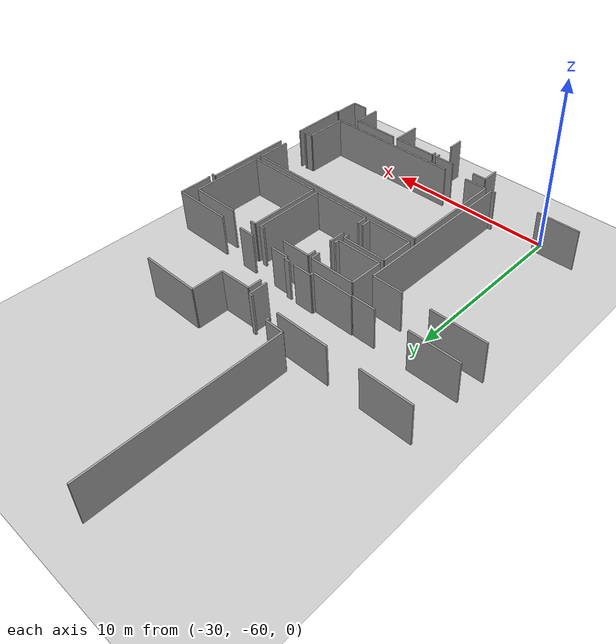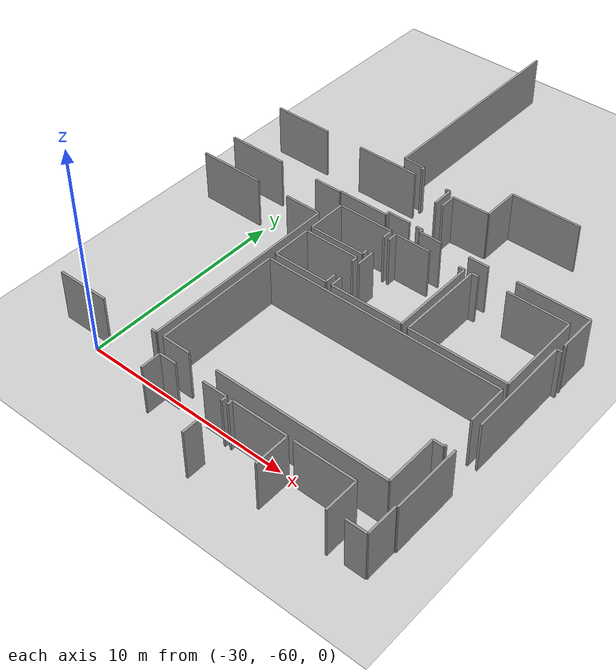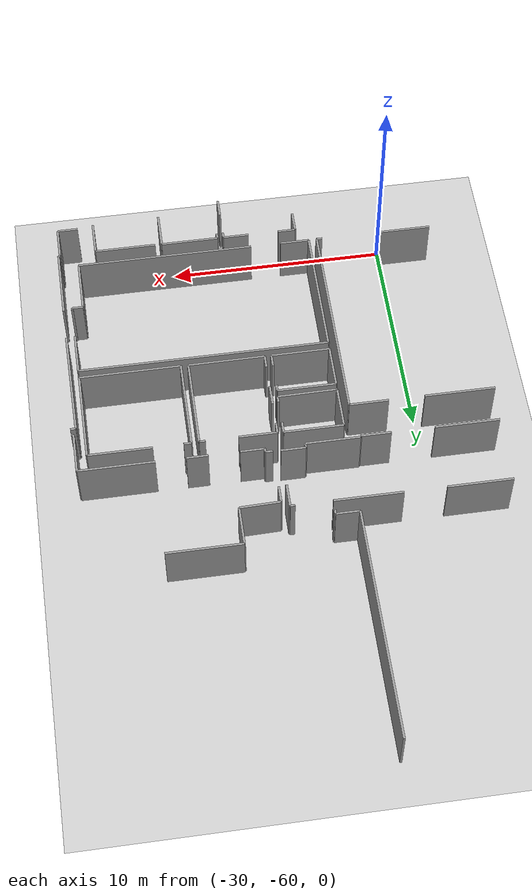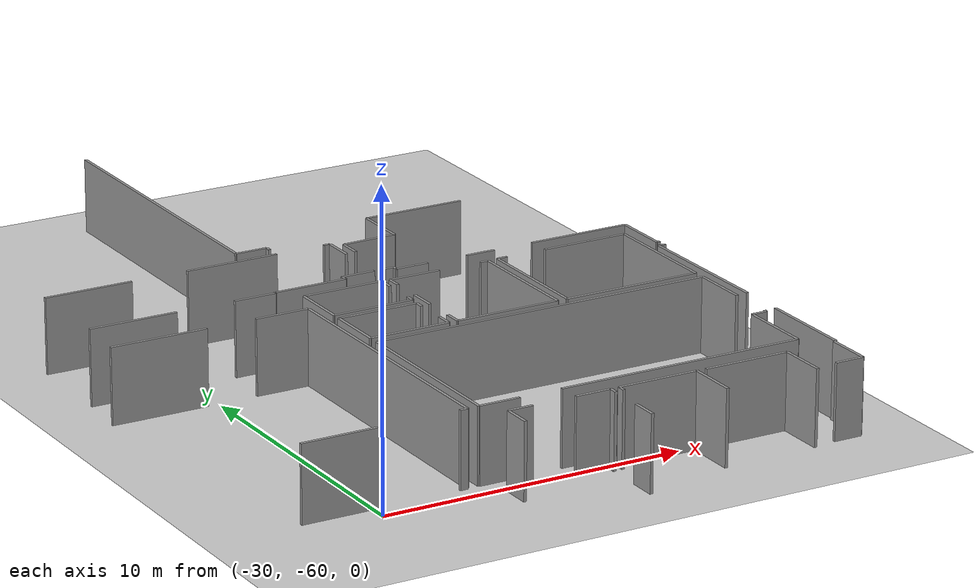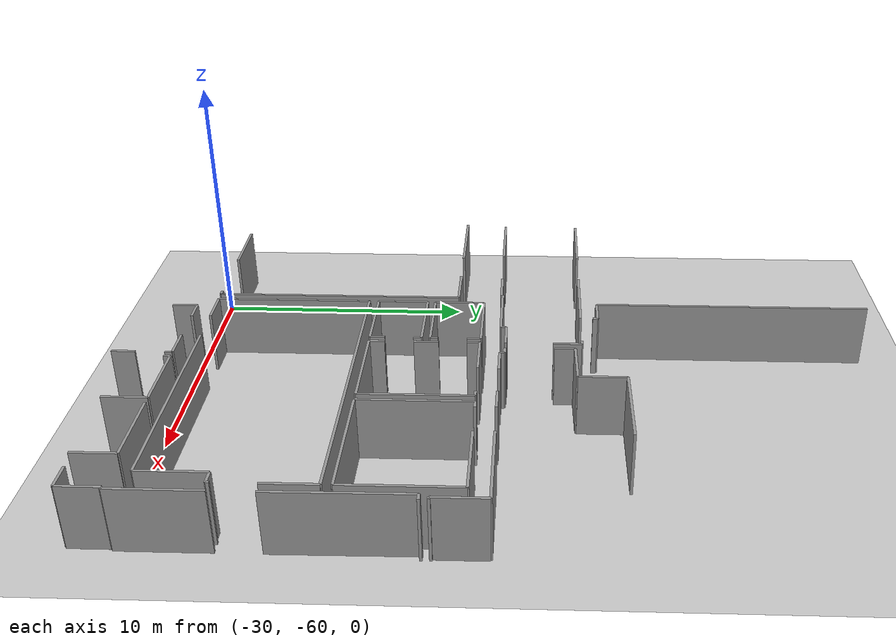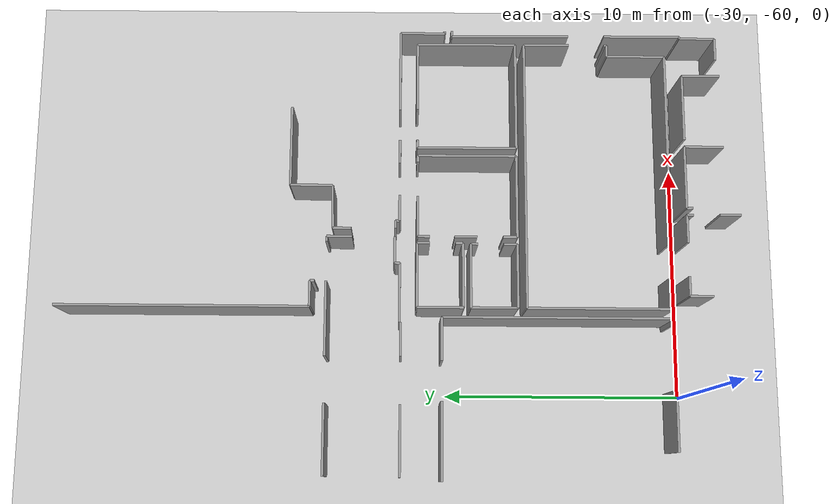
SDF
<sdf version="1.6">
 <world name="default">
  <model name="ground_plane">
   <static>1</static>
   <link name="link">
    <collision name="collision">
     <geometry><plane><normal>0 0 1</normal><size>100 100</size></plane></geometry>
     <surface><friction><ode><mu>100</mu><mu2>50</mu2></ode></friction></surface>
    </collision>
    <visual name="visual">
     <cast_shadows>0</cast_shadows>
     <geometry><plane><normal>0 0 1</normal><size>100 100</size></plane></geometry>
     <material>
      <script><uri>file://media/materials/scripts/gazebo.material</uri><name>Gazebo/Grey</name></script>
     </material>
    </visual>
   </link>
  </model>
  <model name="0510045922_A-40">
   <static>1</static>
   <link name="Wall_1084">
    <collision name="Wall_1084_Collision">
     <geometry><box><size>10.663531804 0.1 2.5</size></box></geometry>
     <pose>5.33176590201 0 1.25 0 0 0</pose>
    </collision>
    <visual name="Wall_1084_Visual">
     <pose>5.33176590201 0 1.25 0 0 0</pose>
     <geometry><box><size>10.663531804 0.1 2.5</size></box></geometry>
     <material>
      <script><uri>file://media/materials/scripts/gazebo.material</uri><name>Gazebo/Grey</name></script>
      <ambient>1 1 1 1</ambient>
     </material>
    </visual>
    <pose>107.676227998 -145.496956218 0 0 0 1.57079632679</pose>
   </link>
   <link name="Wall_1090">
    <collision name="Wall_1090_Collision">
     <geometry><box><size>0.192158607104 0.1 2.5</size></box></geometry>
     <pose>0.0960793035521 0 1.25 0 0 0</pose>
    </collision>
    <visual name="Wall_1090_Visual">
     <pose>0.0960793035521 0 1.25 0 0 0</pose>
     <geometry><box><size>0.192158607104 0.1 2.5</size></box></geometry>
     <material>
      <script><uri>file://media/materials/scripts/gazebo.material</uri><name>Gazebo/Grey</name></script>
      <ambient>1 1 1 1</ambient>
     </material>
    </visual>
    <pose>108.76004321 -145.691402427 0 0 0 1.57079632679</pose>
   </link>
   <link name="Wall_1091">
    <collision name="Wall_1091_Collision">
     <geometry><box><size>1.08381762677 0.1 2.5</size></box></geometry>
     <pose>0.541908813384 0 1.25 0 0 0</pose>
    </collision>
    <visual name="Wall_1091_Visual">
     <pose>0.541908813384 0 1.25 0 0 0</pose>
     <geometry><box><size>1.08381762677 0.1 2.5</size></box></geometry>
     <material>
      <script><uri>file://media/materials/scripts/gazebo.material</uri><name>Gazebo/Grey</name></script>
      <ambient>1 1 1 1</ambient>
     </material>
    </visual>
    <pose>108.76004321 -145.49924382 0 0 0 3.13948196254</pose>
   </link>
   <link name="Wall_1094">
    <collision name="Wall_1094_Collision">
     <geometry><box><size>3.23238228379 0.1 2.5</size></box></geometry>
     <pose>1.61619114189 0 1.25 0 0 0</pose>
    </collision>
    <visual name="Wall_1094_Visual">
     <pose>1.61619114189 0 1.25 0 0 0</pose>
     <geometry><box><size>3.23238228379 0.1 2.5</size></box></geometry>
     <material>
      <script><uri>file://media/materials/scripts/gazebo.material</uri><name>Gazebo/Grey</name></script>
      <ambient>1 1 1 1</ambient>
     </material>
    </visual>
    <pose>100.57347652 -151.006011311 0 0 0 0.0</pose>
   </link>
   <link name="Wall_1095">
    <collision name="Wall_1095_Collision">
     <geometry><box><size>1.80695176971 0.1 2.5</size></box></geometry>
     <pose>0.903475884857 0 1.25 0 0 0</pose>
    </collision>
    <visual name="Wall_1095_Visual">
     <pose>0.903475884857 0 1.25 0 0 0</pose>
     <geometry><box><size>1.80695176971 0.1 2.5</size></box></geometry>
     <material>
      <script><uri>file://media/materials/scripts/gazebo.material</uri><name>Gazebo/Grey</name></script>
      <ambient>1 1 1 1</ambient>
     </material>
    </visual>
    <pose>105.461320455 -151.006011311 0 0 0 0.0</pose>
   </link>
   <link name="Wall_1096">
    <collision name="Wall_1096_Collision">
     <geometry><box><size>9.61606405287 0.1 2.5</size></box></geometry>
     <pose>4.80803202643 0 1.25 0 0 0</pose>
    </collision>
    <visual name="Wall_1096_Visual">
     <pose>4.80803202643 0 1.25 0 0 0</pose>
     <geometry><box><size>9.61606405287 0.1 2.5</size></box></geometry>
     <material>
      <script><uri>file://media/materials/scripts/gazebo.material</uri><name>Gazebo/Grey</name></script>
      <ambient>1 1 1 1</ambient>
     </material>
    </visual>
    <pose>107.268272225 -151.006011311 0 0 0 -1.57079632679</pose>
   </link>
   <link name="Wall_1097">
    <collision name="Wall_1097_Collision">
     <geometry><box><size>0.25494058588 0.1 2.5</size></box></geometry>
     <pose>0.12747029294 0 1.25 0 0 0</pose>
    </collision>
    <visual name="Wall_1097_Visual">
     <pose>0.12747029294 0 1.25 0 0 0</pose>
     <geometry><box><size>0.25494058588 0.1 2.5</size></box></geometry>
     <material>
      <script><uri>file://media/materials/scripts/gazebo.material</uri><name>Gazebo/Grey</name></script>
      <ambient>1 1 1 1</ambient>
     </material>
    </visual>
    <pose>107.268272225 -160.622075364 0 0 0 3.14159265359</pose>
   </link>
   <link name="Wall_1098">
    <collision name="Wall_1098_Collision">
     <geometry><box><size>2.51763360234 0.1 2.5</size></box></geometry>
     <pose>1.25881680117 0 1.25 0 0 0</pose>
    </collision>
    <visual name="Wall_1098_Visual">
     <pose>1.25881680117 0 1.25 0 0 0</pose>
     <geometry><box><size>2.51763360234 0.1 2.5</size></box></geometry>
     <material>
      <script><uri>file://media/materials/scripts/gazebo.material</uri><name>Gazebo/Grey</name></script>
      <ambient>1 1 1 1</ambient>
     </material>
    </visual>
    <pose>104.323111139 -160.622075364 0 0 0 3.14159265359</pose>
   </link>
   <link name="Wall_1154">
    <collision name="Wall_1154_Collision">
     <geometry><box><size>2.96219101481 0.1 2.5</size></box></geometry>
     <pose>1.4810955074 0 1.25 0 0 0</pose>
    </collision>
    <visual name="Wall_1154_Visual">
     <pose>1.4810955074 0 1.25 0 0 0</pose>
     <geometry><box><size>2.96219101481 0.1 2.5</size></box></geometry>
     <material>
      <script><uri>file://media/materials/scripts/gazebo.material</uri><name>Gazebo/Grey</name></script>
      <ambient>1 1 1 1</ambient>
     </material>
    </visual>
    <pose>100.742250747 -146.16722374 0 0 0 0.0</pose>
   </link>
   <link name="Wall_1155">
    <collision name="Wall_1155_Collision">
     <geometry><box><size>3.13554044608 0.1 2.5</size></box></geometry>
     <pose>1.56777022304 0 1.25 0 0 0</pose>
    </collision>
    <visual name="Wall_1155_Visual">
     <pose>1.56777022304 0 1.25 0 0 0</pose>
     <geometry><box><size>3.13554044608 0.1 2.5</size></box></geometry>
     <material>
      <script><uri>file://media/materials/scripts/gazebo.material</uri><name>Gazebo/Grey</name></script>
      <ambient>1 1 1 1</ambient>
     </material>
    </visual>
    <pose>105.620181737 -146.16722374 0 0 0 0.0</pose>
   </link>
   <link name="Wall_1156">
    <collision name="Wall_1156_Collision">
     <geometry><box><size>0.223168329415 0.1 2.5</size></box></geometry>
     <pose>0.111584164707 0 1.25 0 0 0</pose>
    </collision>
    <visual name="Wall_1156_Visual">
     <pose>0.111584164707 0 1.25 0 0 0</pose>
     <geometry><box><size>0.223168329415 0.1 2.5</size></box></geometry>
     <material>
      <script><uri>file://media/materials/scripts/gazebo.material</uri><name>Gazebo/Grey</name></script>
      <ambient>1 1 1 1</ambient>
     </material>
    </visual>
    <pose>110.432280613 -146.16722374 0 0 0 0.0</pose>
   </link>
   <link name="Wall_1157">
    <collision name="Wall_1157_Collision">
     <geometry><box><size>1.07313973438 0.1 2.5</size></box></geometry>
     <pose>0.536569867192 0 1.25 0 0 0</pose>
    </collision>
    <visual name="Wall_1157_Visual">
     <pose>0.536569867192 0 1.25 0 0 0</pose>
     <geometry><box><size>1.07313973438 0.1 2.5</size></box></geometry>
     <material>
      <script><uri>file://media/materials/scripts/gazebo.material</uri><name>Gazebo/Grey</name></script>
      <ambient>1 1 1 1</ambient>
     </material>
    </visual>
    <pose>110.655448942 -146.16722374 0 0 0 -1.57079632679</pose>
   </link>
   <link name="Wall_1158">
    <collision name="Wall_1158_Collision">
     <geometry><box><size>1.13032979602 0.1 2.5</size></box></geometry>
     <pose>0.565164898011 0 1.25 0 0 0</pose>
    </collision>
    <visual name="Wall_1158_Visual">
     <pose>0.565164898011 0 1.25 0 0 0</pose>
     <geometry><box><size>1.13032979602 0.1 2.5</size></box></geometry>
     <material>
      <script><uri>file://media/materials/scripts/gazebo.material</uri><name>Gazebo/Grey</name></script>
      <ambient>1 1 1 1</ambient>
     </material>
    </visual>
    <pose>110.655448942 -149.029268603 0 0 0 3.14159265359</pose>
   </link>
   <link name="Wall_1159">
    <collision name="Wall_1159_Collision">
     <geometry><box><size>0.21071360488 0.1 2.5</size></box></geometry>
     <pose>0.10535680244 0 1.25 0 0 0</pose>
    </collision>
    <visual name="Wall_1159_Visual">
     <pose>0.10535680244 0 1.25 0 0 0</pose>
     <geometry><box><size>0.21071360488 0.1 2.5</size></box></geometry>
     <material>
      <script><uri>file://media/materials/scripts/gazebo.material</uri><name>Gazebo/Grey</name></script>
      <ambient>1 1 1 1</ambient>
     </material>
    </visual>
    <pose>109.525119146 -149.029268603 0 0 0 -1.57079632679</pose>
   </link>
   <link name="Wall_1160">
    <collision name="Wall_1160_Collision">
     <geometry><box><size>2.4899281947 0.1 2.5</size></box></geometry>
     <pose>1.24496409735 0 1.25 0 0 0</pose>
    </collision>
    <visual name="Wall_1160_Visual">
     <pose>1.24496409735 0 1.25 0 0 0</pose>
     <geometry><box><size>2.4899281947 0.1 2.5</size></box></geometry>
     <material>
      <script><uri>file://media/materials/scripts/gazebo.material</uri><name>Gazebo/Grey</name></script>
      <ambient>1 1 1 1</ambient>
     </material>
    </visual>
    <pose>109.525119146 -149.239982208 0 0 0 3.14159265359</pose>
   </link>
   <link name="Wall_1161">
    <collision name="Wall_1161_Collision">
     <geometry><box><size>0.0538857469657 0.1 2.5</size></box></geometry>
     <pose>0.0269428734829 0 1.25 0 0 0</pose>
    </collision>
    <visual name="Wall_1161_Visual">
     <pose>0.0269428734829 0 1.25 0 0 0</pose>
     <geometry><box><size>0.0538857469657 0.1 2.5</size></box></geometry>
     <material>
      <script><uri>file://media/materials/scripts/gazebo.material</uri><name>Gazebo/Grey</name></script>
      <ambient>1 1 1 1</ambient>
     </material>
    </visual>
    <pose>107.035190951 -149.239982208 0 0 0 -1.57079632679</pose>
   </link>
   <link name="Wall_1162">
    <collision name="Wall_1162_Collision">
     <geometry><box><size>1.39391243566 0.1 2.5</size></box></geometry>
     <pose>0.696956217831 0 1.25 0 0 0</pose>
    </collision>
    <visual name="Wall_1162_Visual">
     <pose>0.696956217831 0 1.25 0 0 0</pose>
     <geometry><box><size>1.39391243566 0.1 2.5</size></box></geometry>
     <material>
      <script><uri>file://media/materials/scripts/gazebo.material</uri><name>Gazebo/Grey</name></script>
      <ambient>1 1 1 1</ambient>
     </material>
    </visual>
    <pose>107.035190951 -149.293867955 0 0 0 3.14159265359</pose>
   </link>
   <link name="Wall_1163">
    <collision name="Wall_1163_Collision">
     <geometry><box><size>2.9459236195 0.1 2.5</size></box></geometry>
     <pose>1.47296180975 0 1.25 0 0 0</pose>
    </collision>
    <visual name="Wall_1163_Visual">
     <pose>1.47296180975 0 1.25 0 0 0</pose>
     <geometry><box><size>2.9459236195 0.1 2.5</size></box></geometry>
     <material>
      <script><uri>file://media/materials/scripts/gazebo.material</uri><name>Gazebo/Grey</name></script>
      <ambient>1 1 1 1</ambient>
     </material>
    </visual>
    <pose>103.664535807 -149.293867955 0 0 0 3.14159265359</pose>
   </link>
   <link name="Wall_1182">
    <collision name="Wall_1182_Collision">
     <geometry><box><size>1.93963271272 0.1 2.5</size></box></geometry>
     <pose>0.969816356358 0 1.25 0 0 0</pose>
    </collision>
    <visual name="Wall_1182_Visual">
     <pose>0.969816356358 0 1.25 0 0 0</pose>
     <geometry><box><size>1.93963271272 0.1 2.5</size></box></geometry>
     <material>
      <script><uri>file://media/materials/scripts/gazebo.material</uri><name>Gazebo/Grey</name></script>
      <ambient>1 1 1 1</ambient>
     </material>
    </visual>
    <pose>107.669111012 -151.908597573 0 0 0 1.57079632679</pose>
   </link>
   <link name="Wall_1183">
    <collision name="Wall_1183_Collision">
     <geometry><box><size>2.72504289255 0.1 2.5</size></box></geometry>
     <pose>1.36252144627 0 1.25 0 0 0</pose>
    </collision>
    <visual name="Wall_1183_Visual">
     <pose>1.36252144627 0 1.25 0 0 0</pose>
     <geometry><box><size>2.72504289255 0.1 2.5</size></box></geometry>
     <material>
      <script><uri>file://media/materials/scripts/gazebo.material</uri><name>Gazebo/Grey</name></script>
      <ambient>1 1 1 1</ambient>
     </material>
    </visual>
    <pose>107.669111012 -149.96896486 0 0 0 0.0</pose>
   </link>
   <link name="Wall_1184">
    <collision name="Wall_1184_Collision">
     <geometry><box><size>0.52741945733 0.1 2.5</size></box></geometry>
     <pose>0.263709728665 0 1.25 0 0 0</pose>
    </collision>
    <visual name="Wall_1184_Visual">
     <pose>0.263709728665 0 1.25 0 0 0</pose>
     <geometry><box><size>0.52741945733 0.1 2.5</size></box></geometry>
     <material>
      <script><uri>file://media/materials/scripts/gazebo.material</uri><name>Gazebo/Grey</name></script>
      <ambient>1 1 1 1</ambient>
     </material>
    </visual>
    <pose>110.394153905 -149.96896486 0 0 0 -1.57079632679</pose>
   </link>
   <link name="Wall_1185">
    <collision name="Wall_1185_Collision">
     <geometry><box><size>0.300438457139 0.1 2.5</size></box></geometry>
     <pose>0.15021922857 0 1.25 0 0 0</pose>
    </collision>
    <visual name="Wall_1185_Visual">
     <pose>0.15021922857 0 1.25 0 0 0</pose>
     <geometry><box><size>0.300438457139 0.1 2.5</size></box></geometry>
     <material>
      <script><uri>file://media/materials/scripts/gazebo.material</uri><name>Gazebo/Grey</name></script>
      <ambient>1 1 1 1</ambient>
     </material>
    </visual>
    <pose>110.394153905 -151.588841584 0 0 0 -1.57079632679</pose>
   </link>
   <link name="Wall_1186">
    <collision name="Wall_1186_Collision">
     <geometry><box><size>2.72511136162 0.1 2.5</size></box></geometry>
     <pose>1.36255568081 0 1.25 0 0 0</pose>
    </collision>
    <visual name="Wall_1186_Visual">
     <pose>1.36255568081 0 1.25 0 0 0</pose>
     <geometry><box><size>2.72511136162 0.1 2.5</size></box></geometry>
     <material>
      <script><uri>file://media/materials/scripts/gazebo.material</uri><name>Gazebo/Grey</name></script>
      <ambient>1 1 1 1</ambient>
     </material>
    </visual>
    <pose>110.394153905 -151.889280041 0 0 0 -3.13450388137</pose>
   </link>
   <link name="Wall_1187">
    <collision name="Wall_1187_Collision">
     <geometry><box><size>1.95869606659 0.1 2.5</size></box></geometry>
     <pose>0.979348033297 0 1.25 0 0 0</pose>
    </collision>
    <visual name="Wall_1187_Visual">
     <pose>0.979348033297 0 1.25 0 0 0</pose>
     <geometry><box><size>1.95869606659 0.1 2.5</size></box></geometry>
     <material>
      <script><uri>file://media/materials/scripts/gazebo.material</uri><name>Gazebo/Grey</name></script>
      <ambient>1 1 1 1</ambient>
     </material>
    </visual>
    <pose>107.666060876 -154.176628328 0 0 0 1.57079632679</pose>
   </link>
   <link name="Wall_1188">
    <collision name="Wall_1188_Collision">
     <geometry><box><size>2.69276227998 0.1 2.5</size></box></geometry>
     <pose>1.34638113999 0 1.25 0 0 0</pose>
    </collision>
    <visual name="Wall_1188_Visual">
     <pose>1.34638113999 0 1.25 0 0 0</pose>
     <geometry><box><size>2.69276227998 0.1 2.5</size></box></geometry>
     <material>
      <script><uri>file://media/materials/scripts/gazebo.material</uri><name>Gazebo/Grey</name></script>
      <ambient>1 1 1 1</ambient>
     </material>
    </visual>
    <pose>107.666060876 -152.217932262 0 0 0 0.0</pose>
   </link>
   <link name="Wall_1189">
    <collision name="Wall_1189_Collision">
     <geometry><box><size>0.302980237656 0.1 2.5</size></box></geometry>
     <pose>0.151490118828 0 1.25 0 0 0</pose>
    </collision>
    <visual name="Wall_1189_Visual">
     <pose>0.151490118828 0 1.25 0 0 0</pose>
     <geometry><box><size>0.302980237656 0.1 2.5</size></box></geometry>
     <material>
      <script><uri>file://media/materials/scripts/gazebo.material</uri><name>Gazebo/Grey</name></script>
      <ambient>1 1 1 1</ambient>
     </material>
    </visual>
    <pose>110.358823156 -152.217932262 0 0 0 -1.57079632679</pose>
   </link>
   <link name="Wall_1190">
    <collision name="Wall_1190_Collision">
     <geometry><box><size>0.573679862744 0.1 2.5</size></box></geometry>
     <pose>0.286839931372 0 1.25 0 0 0</pose>
    </collision>
    <visual name="Wall_1190_Visual">
     <pose>0.286839931372 0 1.25 0 0 0</pose>
     <geometry><box><size>0.573679862744 0.1 2.5</size></box></geometry>
     <material>
      <script><uri>file://media/materials/scripts/gazebo.material</uri><name>Gazebo/Grey</name></script>
      <ambient>1 1 1 1</ambient>
     </material>
    </visual>
    <pose>110.358823156 -153.602185931 0 0 0 -1.57079632679</pose>
   </link>
   <link name="Wall_1191">
    <collision name="Wall_1191_Collision">
     <geometry><box><size>2.69276238794 0.1 2.5</size></box></geometry>
     <pose>1.34638119397 0 1.25 0 0 0</pose>
    </collision>
    <visual name="Wall_1191_Visual">
     <pose>1.34638119397 0 1.25 0 0 0</pose>
     <geometry><box><size>2.69276238794 0.1 2.5</size></box></geometry>
     <material>
      <script><uri>file://media/materials/scripts/gazebo.material</uri><name>Gazebo/Grey</name></script>
      <ambient>1 1 1 1</ambient>
     </material>
    </visual>
    <pose>110.358823156 -154.175865794 0 0 0 -3.14130947444</pose>
   </link>
   <link name="Wall_1192">
    <collision name="Wall_1192_Collision">
     <geometry><box><size>0.590455614158 0.1 2.5</size></box></geometry>
     <pose>0.295227807079 0 1.25 0 0 0</pose>
    </collision>
    <visual name="Wall_1192_Visual">
     <pose>0.295227807079 0 1.25 0 0 0</pose>
     <geometry><box><size>0.590455614158 0.1 2.5</size></box></geometry>
     <material>
      <script><uri>file://media/materials/scripts/gazebo.material</uri><name>Gazebo/Grey</name></script>
      <ambient>1 1 1 1</ambient>
     </material>
    </visual>
    <pose>110.667903667 -154.173324013 0 0 0 1.57079632679</pose>
   </link>
   <link name="Wall_1193">
    <collision name="Wall_1193_Collision">
     <geometry><box><size>0.944525640211 0.1 2.5</size></box></geometry>
     <pose>0.472262820105 0 1.25 0 0 0</pose>
    </collision>
    <visual name="Wall_1193_Visual">
     <pose>0.472262820105 0 1.25 0 0 0</pose>
     <geometry><box><size>0.944525640211 0.1 2.5</size></box></geometry>
     <material>
      <script><uri>file://media/materials/scripts/gazebo.material</uri><name>Gazebo/Grey</name></script>
      <ambient>1 1 1 1</ambient>
     </material>
    </visual>
    <pose>110.667903667 -152.484819216 0 0 0 1.57079632679</pose>
   </link>
   <link name="Wall_1194">
    <collision name="Wall_1194_Collision">
     <geometry><box><size>0.496663913071 0.1 2.5</size></box></geometry>
     <pose>0.248331956536 0 1.25 0 0 0</pose>
    </collision>
    <visual name="Wall_1194_Visual">
     <pose>0.248331956536 0 1.25 0 0 0</pose>
     <geometry><box><size>0.496663913071 0.1 2.5</size></box></geometry>
     <material>
      <script><uri>file://media/materials/scripts/gazebo.material</uri><name>Gazebo/Grey</name></script>
      <ambient>1 1 1 1</ambient>
     </material>
    </visual>
    <pose>110.667903667 -150.487233907 0 0 0 1.57079632679</pose>
   </link>
   <link name="Wall_1195">
    <collision name="Wall_1195_Collision">
     <geometry><box><size>1.74849081782 0.1 2.5</size></box></geometry>
     <pose>0.874245408909 0 1.25 0 0 0</pose>
    </collision>
    <visual name="Wall_1195_Visual">
     <pose>0.874245408909 0 1.25 0 0 0</pose>
     <geometry><box><size>1.74849081782 0.1 2.5</size></box></geometry>
     <material>
      <script><uri>file://media/materials/scripts/gazebo.material</uri><name>Gazebo/Grey</name></script>
      <ambient>1 1 1 1</ambient>
     </material>
    </visual>
    <pose>110.667903667 -149.990569994 0 0 0 0.0</pose>
   </link>
   <link name="Wall_1196">
    <collision name="Wall_1196_Collision">
     <geometry><box><size>0.286712842346 0.1 2.5</size></box></geometry>
     <pose>0.143356421173 0 1.25 0 0 0</pose>
    </collision>
    <visual name="Wall_1196_Visual">
     <pose>0.143356421173 0 1.25 0 0 0</pose>
     <geometry><box><size>0.286712842346 0.1 2.5</size></box></geometry>
     <material>
      <script><uri>file://media/materials/scripts/gazebo.material</uri><name>Gazebo/Grey</name></script>
      <ambient>1 1 1 1</ambient>
     </material>
    </visual>
    <pose>113.895964923 -149.990569994 0 0 0 0.0</pose>
   </link>
   <link name="Wall_1197">
    <collision name="Wall_1197_Collision">
     <geometry><box><size>4.17360360933 0.1 2.5</size></box></geometry>
     <pose>2.08680180466 0 1.25 0 0 0</pose>
    </collision>
    <visual name="Wall_1197_Visual">
     <pose>2.08680180466 0 1.25 0 0 0</pose>
     <geometry><box><size>4.17360360933 0.1 2.5</size></box></geometry>
     <material>
      <script><uri>file://media/materials/scripts/gazebo.material</uri><name>Gazebo/Grey</name></script>
      <ambient>1 1 1 1</ambient>
     </material>
    </visual>
    <pose>114.182677766 -149.990569994 0 0 0 -1.57079632679</pose>
   </link>
   <link name="Wall_1198">
    <collision name="Wall_1198_Collision">
     <geometry><box><size>3.51478601039 0.1 2.5</size></box></geometry>
     <pose>1.75739300519 0 1.25 0 0 0</pose>
    </collision>
    <visual name="Wall_1198_Visual">
     <pose>1.75739300519 0 1.25 0 0 0</pose>
     <geometry><box><size>3.51478601039 0.1 2.5</size></box></geometry>
     <material>
      <script><uri>file://media/materials/scripts/gazebo.material</uri><name>Gazebo/Grey</name></script>
      <ambient>1 1 1 1</ambient>
     </material>
    </visual>
    <pose>114.182677766 -154.164173604 0 0 0 -3.13898924611</pose>
   </link>
   <link name="Wall_1199">
    <collision name="Wall_1199_Collision">
     <geometry><box><size>4.20664675605 0.1 2.5</size></box></geometry>
     <pose>2.10332337803 0 1.25 0 0 0</pose>
    </collision>
    <visual name="Wall_1199_Visual">
     <pose>2.10332337803 0 1.25 0 0 0</pose>
     <geometry><box><size>4.20664675605 0.1 2.5</size></box></geometry>
     <material>
      <script><uri>file://media/materials/scripts/gazebo.material</uri><name>Gazebo/Grey</name></script>
      <ambient>1 1 1 1</ambient>
     </material>
    </visual>
    <pose>114.527343204 -154.172815657 0 0 0 1.57079632679</pose>
   </link>
   <link name="Wall_1200">
    <collision name="Wall_1200_Collision">
     <geometry><box><size>0.344157082036 0.1 2.5</size></box></geometry>
     <pose>0.172078541018 0 1.25 0 0 0</pose>
    </collision>
    <visual name="Wall_1200_Visual">
     <pose>0.172078541018 0 1.25 0 0 0</pose>
     <geometry><box><size>0.344157082036 0.1 2.5</size></box></geometry>
     <material>
      <script><uri>file://media/materials/scripts/gazebo.material</uri><name>Gazebo/Grey</name></script>
      <ambient>1 1 1 1</ambient>
     </material>
    </visual>
    <pose>114.527343204 -149.966168901 0 0 0 0.0</pose>
   </link>
   <link name="Wall_1201">
    <collision name="Wall_1201_Collision">
     <geometry><box><size>2.92635190951 0.1 2.5</size></box></geometry>
     <pose>1.46317595476 0 1.25 0 0 0</pose>
    </collision>
    <visual name="Wall_1201_Visual">
     <pose>1.46317595476 0 1.25 0 0 0</pose>
     <geometry><box><size>2.92635190951 0.1 2.5</size></box></geometry>
     <material>
      <script><uri>file://media/materials/scripts/gazebo.material</uri><name>Gazebo/Grey</name></script>
      <ambient>1 1 1 1</ambient>
     </material>
    </visual>
    <pose>116.246603546 -149.966168901 0 0 0 0.0</pose>
   </link>
   <link name="Wall_1202">
    <collision name="Wall_1202_Collision">
     <geometry><box><size>4.20080066086 0.1 2.5</size></box></geometry>
     <pose>2.10040033043 0 1.25 0 0 0</pose>
    </collision>
    <visual name="Wall_1202_Visual">
     <pose>2.10040033043 0 1.25 0 0 0</pose>
     <geometry><box><size>4.20080066086 0.1 2.5</size></box></geometry>
     <material>
      <script><uri>file://media/materials/scripts/gazebo.material</uri><name>Gazebo/Grey</name></script>
      <ambient>1 1 1 1</ambient>
     </material>
    </visual>
    <pose>119.172955455 -149.966168901 0 0 0 -1.57079632679</pose>
   </link>
   <link name="Wall_1203">
    <collision name="Wall_1203_Collision">
     <geometry><box><size>4.64561592978 0.1 2.5</size></box></geometry>
     <pose>2.32280796489 0 1.25 0 0 0</pose>
    </collision>
    <visual name="Wall_1203_Visual">
     <pose>2.32280796489 0 1.25 0 0 0</pose>
     <geometry><box><size>4.64561592978 0.1 2.5</size></box></geometry>
     <material>
      <script><uri>file://media/materials/scripts/gazebo.material</uri><name>Gazebo/Grey</name></script>
      <ambient>1 1 1 1</ambient>
     </material>
    </visual>
    <pose>119.172955455 -154.166969562 0 0 0 -3.14033424204</pose>
   </link>
   <link name="Wall_1470">
    <collision name="Wall_1470_Collision">
     <geometry><box><size>1.79195526466 0.1 2.5</size></box></geometry>
     <pose>0.895977632331 0 1.25 0 0 0</pose>
    </collision>
    <visual name="Wall_1470_Visual">
     <pose>0.895977632331 0 1.25 0 0 0</pose>
     <geometry><box><size>1.79195526466 0.1 2.5</size></box></geometry>
     <material>
      <script><uri>file://media/materials/scripts/gazebo.material</uri><name>Gazebo/Grey</name></script>
      <ambient>1 1 1 1</ambient>
     </material>
    </visual>
    <pose>112.85790176 -146.377937345 0 0 0 1.57079632679</pose>
   </link>
   <link name="Wall_1471">
    <collision name="Wall_1471_Collision">
     <geometry><box><size>3.43928321789 0.1 2.5</size></box></geometry>
     <pose>1.71964160895 0 1.25 0 0 0</pose>
    </collision>
    <visual name="Wall_1471_Visual">
     <pose>1.71964160895 0 1.25 0 0 0</pose>
     <geometry><box><size>3.43928321789 0.1 2.5</size></box></geometry>
     <material>
      <script><uri>file://media/materials/scripts/gazebo.material</uri><name>Gazebo/Grey</name></script>
      <ambient>1 1 1 1</ambient>
     </material>
    </visual>
    <pose>112.85790176 -144.58598208 0 0 0 0.0</pose>
   </link>
   <link name="Wall_1484">
    <collision name="Wall_1484_Collision">
     <geometry><box><size>0.100400330431 0.1 2.5</size></box></geometry>
     <pose>0.0502001652157 0 1.25 0 0 0</pose>
    </collision>
    <visual name="Wall_1484_Visual">
     <pose>0.0502001652157 0 1.25 0 0 0</pose>
     <geometry><box><size>0.100400330431 0.1 2.5</size></box></geometry>
     <material>
      <script><uri>file://media/materials/scripts/gazebo.material</uri><name>Gazebo/Grey</name></script>
      <ambient>1 1 1 1</ambient>
     </material>
    </visual>
    <pose>119.77383237 -151.121408146 0 0 0 3.14159265359</pose>
   </link>
   <link name="Wall_1485">
    <collision name="Wall_1485_Collision">
     <geometry><box><size>1.89947258054 0.1 2.5</size></box></geometry>
     <pose>0.949736290271 0 1.25 0 0 0</pose>
    </collision>
    <visual name="Wall_1485_Visual">
     <pose>0.949736290271 0 1.25 0 0 0</pose>
     <geometry><box><size>1.89947258054 0.1 2.5</size></box></geometry>
     <material>
      <script><uri>file://media/materials/scripts/gazebo.material</uri><name>Gazebo/Grey</name></script>
      <ambient>1 1 1 1</ambient>
     </material>
    </visual>
    <pose>119.673432039 -151.121408146 0 0 0 1.57079632679</pose>
   </link>
   <link name="Wall_1486">
    <collision name="Wall_1486_Collision">
     <geometry><box><size>3.46012581814 0.1 2.5</size></box></geometry>
     <pose>1.73006290907 0 1.25 0 0 0</pose>
    </collision>
    <visual name="Wall_1486_Visual">
     <pose>1.73006290907 0 1.25 0 0 0</pose>
     <geometry><box><size>3.46012581814 0.1 2.5</size></box></geometry>
     <material>
      <script><uri>file://media/materials/scripts/gazebo.material</uri><name>Gazebo/Grey</name></script>
      <ambient>1 1 1 1</ambient>
     </material>
    </visual>
    <pose>119.673432039 -149.221935566 0 0 0 3.14159265359</pose>
   </link>
   <link name="Wall_1487">
    <collision name="Wall_1487_Collision">
     <geometry><box><size>0.983414882125 0.1 2.5</size></box></geometry>
     <pose>0.491707441062 0 1.25 0 0 0</pose>
    </collision>
    <visual name="Wall_1487_Visual">
     <pose>0.491707441062 0 1.25 0 0 0</pose>
     <geometry><box><size>0.983414882125 0.1 2.5</size></box></geometry>
     <material>
      <script><uri>file://media/materials/scripts/gazebo.material</uri><name>Gazebo/Grey</name></script>
      <ambient>1 1 1 1</ambient>
     </material>
    </visual>
    <pose>114.842523988 -149.221935566 0 0 0 3.14159265359</pose>
   </link>
   <link name="Wall_1488">
    <collision name="Wall_1488_Collision">
     <geometry><box><size>1.11126644214 0.1 2.5</size></box></geometry>
     <pose>0.555633221071 0 1.25 0 0 0</pose>
    </collision>
    <visual name="Wall_1488_Visual">
     <pose>0.555633221071 0 1.25 0 0 0</pose>
     <geometry><box><size>1.11126644214 0.1 2.5</size></box></geometry>
     <material>
      <script><uri>file://media/materials/scripts/gazebo.material</uri><name>Gazebo/Grey</name></script>
      <ambient>1 1 1 1</ambient>
     </material>
    </visual>
    <pose>112.445879138 -149.221935566 0 0 0 3.14159265359</pose>
   </link>
   <link name="Wall_1489">
    <collision name="Wall_1489_Collision">
     <geometry><box><size>0.172841075173 0.1 2.5</size></box></geometry>
     <pose>0.0864205375866 0 1.25 0 0 0</pose>
    </collision>
    <visual name="Wall_1489_Visual">
     <pose>0.0864205375866 0 1.25 0 0 0</pose>
     <geometry><box><size>0.172841075173 0.1 2.5</size></box></geometry>
     <material>
      <script><uri>file://media/materials/scripts/gazebo.material</uri><name>Gazebo/Grey</name></script>
      <ambient>1 1 1 1</ambient>
     </material>
    </visual>
    <pose>111.334612696 -149.221935566 0 0 0 1.57079632679</pose>
   </link>
   <link name="Wall_1490">
    <collision name="Wall_1490_Collision">
     <geometry><box><size>0.326110440363 0.1 2.5</size></box></geometry>
     <pose>0.163055220182 0 1.25 0 0 0</pose>
    </collision>
    <visual name="Wall_1490_Visual">
     <pose>0.163055220182 0 1.25 0 0 0</pose>
     <geometry><box><size>0.326110440363 0.1 2.5</size></box></geometry>
     <material>
      <script><uri>file://media/materials/scripts/gazebo.material</uri><name>Gazebo/Grey</name></script>
      <ambient>1 1 1 1</ambient>
     </material>
    </visual>
    <pose>111.334612696 -149.049094491 0 0 0 3.14159265359</pose>
   </link>
   <link name="Wall_1491">
    <collision name="Wall_1491_Collision">
     <geometry><box><size>0.773717989452 0.1 2.5</size></box></geometry>
     <pose>0.386858994726 0 1.25 0 0 0</pose>
    </collision>
    <visual name="Wall_1491_Visual">
     <pose>0.386858994726 0 1.25 0 0 0</pose>
     <geometry><box><size>0.773717989452 0.1 2.5</size></box></geometry>
     <material>
      <script><uri>file://media/materials/scripts/gazebo.material</uri><name>Gazebo/Grey</name></script>
      <ambient>1 1 1 1</ambient>
     </material>
    </visual>
    <pose>111.008502256 -147.196136494 0 0 0 1.57079632679</pose>
   </link>
   <link name="Wall_1492">
    <collision name="Wall_1492_Collision">
     <geometry><box><size>1.84993435024 0.1 2.5</size></box></geometry>
     <pose>0.924967175122 0 1.25 0 0 0</pose>
    </collision>
    <visual name="Wall_1492_Visual">
     <pose>0.924967175122 0 1.25 0 0 0</pose>
     <geometry><box><size>1.84993435024 0.1 2.5</size></box></geometry>
     <material>
      <script><uri>file://media/materials/scripts/gazebo.material</uri><name>Gazebo/Grey</name></script>
      <ambient>1 1 1 1</ambient>
     </material>
    </visual>
    <pose>111.008502256 -146.422418504 0 0 0 0.0240470405246</pose>
   </link>
   <link name="Wall_1684">
    <collision name="Wall_1684_Collision">
     <geometry><box><size>6.06036728728 0.1 2.5</size></box></geometry>
     <pose>3.03018364364 0 1.25 0 0 0</pose>
    </collision>
    <visual name="Wall_1684_Visual">
     <pose>3.03018364364 0 1.25 0 0 0</pose>
     <geometry><box><size>6.06036728728 0.1 2.5</size></box></geometry>
     <material>
      <script><uri>file://media/materials/scripts/gazebo.material</uri><name>Gazebo/Grey</name></script>
      <ambient>1 1 1 1</ambient>
     </material>
    </visual>
    <pose>107.661994027 -160.608603927 0 0 0 1.57079632679</pose>
   </link>
   <link name="Wall_1685">
    <collision name="Wall_1685_Collision">
     <geometry><box><size>11.51858677 0.1 2.5</size></box></geometry>
     <pose>5.75929338502 0 1.25 0 0 0</pose>
    </collision>
    <visual name="Wall_1685_Visual">
     <pose>5.75929338502 0 1.25 0 0 0</pose>
     <geometry><box><size>11.51858677 0.1 2.5</size></box></geometry>
     <material>
      <script><uri>file://media/materials/scripts/gazebo.material</uri><name>Gazebo/Grey</name></script>
      <ambient>1 1 1 1</ambient>
     </material>
    </visual>
    <pose>107.661994027 -154.54823664 0 0 0 0.0</pose>
   </link>
   <link name="Wall_1686">
    <collision name="Wall_1686_Collision">
     <geometry><box><size>1.9523416153 0.1 2.5</size></box></geometry>
     <pose>0.976170807651 0 1.25 0 0 0</pose>
    </collision>
    <visual name="Wall_1686_Visual">
     <pose>0.976170807651 0 1.25 0 0 0</pose>
     <geometry><box><size>1.9523416153 0.1 2.5</size></box></geometry>
     <material>
      <script><uri>file://media/materials/scripts/gazebo.material</uri><name>Gazebo/Grey</name></script>
      <ambient>1 1 1 1</ambient>
     </material>
    </visual>
    <pose>119.180580797 -154.54823664 0 0 0 -1.57079632679</pose>
   </link>
   <link name="Wall_1687">
    <collision name="Wall_1687_Collision">
     <geometry><box><size>0.107771493931 0.1 2.5</size></box></geometry>
     <pose>0.0538857469657 0 1.25 0 0 0</pose>
    </collision>
    <visual name="Wall_1687_Visual">
     <pose>0.0538857469657 0 1.25 0 0 0</pose>
     <geometry><box><size>0.107771493931 0.1 2.5</size></box></geometry>
     <material>
      <script><uri>file://media/materials/scripts/gazebo.material</uri><name>Gazebo/Grey</name></script>
      <ambient>1 1 1 1</ambient>
     </material>
    </visual>
    <pose>119.180580797 -158.026663278 0 0 0 -1.57079632679</pose>
   </link>
   <link name="Wall_1688">
    <collision name="Wall_1688_Collision">
     <geometry><box><size>0.506576857088 0.1 2.5</size></box></geometry>
     <pose>0.253288428544 0 1.25 0 0 0</pose>
    </collision>
    <visual name="Wall_1688_Visual">
     <pose>0.253288428544 0 1.25 0 0 0</pose>
     <geometry><box><size>0.506576857088 0.1 2.5</size></box></geometry>
     <material>
      <script><uri>file://media/materials/scripts/gazebo.material</uri><name>Gazebo/Grey</name></script>
      <ambient>1 1 1 1</ambient>
     </material>
    </visual>
    <pose>119.180580797 -158.134434772 0 0 0 3.14159265359</pose>
   </link>
   <link name="Wall_1689">
    <collision name="Wall_1689_Collision">
     <geometry><box><size>2.47442333355 0.1 2.5</size></box></geometry>
     <pose>1.23721166677 0 1.25 0 0 0</pose>
    </collision>
    <visual name="Wall_1689_Visual">
     <pose>1.23721166677 0 1.25 0 0 0</pose>
     <geometry><box><size>2.47442333355 0.1 2.5</size></box></geometry>
     <material>
      <script><uri>file://media/materials/scripts/gazebo.material</uri><name>Gazebo/Grey</name></script>
      <ambient>1 1 1 1</ambient>
     </material>
    </visual>
    <pose>118.67400394 -158.134434772 0 0 0 -1.57079632679</pose>
   </link>
   <link name="Wall_1690">
    <collision name="Wall_1690_Collision">
     <geometry><box><size>8.22774353435 0.1 2.5</size></box></geometry>
     <pose>4.11387176717 0 1.25 0 0 0</pose>
    </collision>
    <visual name="Wall_1690_Visual">
     <pose>4.11387176717 0 1.25 0 0 0</pose>
     <geometry><box><size>8.22774353435 0.1 2.5</size></box></geometry>
     <material>
      <script><uri>file://media/materials/scripts/gazebo.material</uri><name>Gazebo/Grey</name></script>
      <ambient>1 1 1 1</ambient>
     </material>
    </visual>
    <pose>118.67400394 -160.608858105 0 0 0 3.14159265359</pose>
   </link>
   <link name="Wall_1691">
    <collision name="Wall_1691_Collision">
     <geometry><box><size>1.36925718824 0.1 2.5</size></box></geometry>
     <pose>0.684628594118 0 1.25 0 0 0</pose>
    </collision>
    <visual name="Wall_1691_Visual">
     <pose>0.684628594118 0 1.25 0 0 0</pose>
     <geometry><box><size>1.36925718824 0.1 2.5</size></box></geometry>
     <material>
      <script><uri>file://media/materials/scripts/gazebo.material</uri><name>Gazebo/Grey</name></script>
      <ambient>1 1 1 1</ambient>
     </material>
    </visual>
    <pose>109.031251191 -160.608858105 0 0 0 3.14140702151</pose>
   </link>
   <link name="Wall_1693">
    <collision name="Wall_1693_Collision">
     <geometry><box><size>0.979856389401 0.1 2.5</size></box></geometry>
     <pose>0.4899281947 0 1.25 0 0 0</pose>
    </collision>
    <visual name="Wall_1693_Visual">
     <pose>0.4899281947 0 1.25 0 0 0</pose>
     <geometry><box><size>0.979856389401 0.1 2.5</size></box></geometry>
     <material>
      <script><uri>file://media/materials/scripts/gazebo.material</uri><name>Gazebo/Grey</name></script>
      <ambient>1 1 1 1</ambient>
     </material>
    </visual>
    <pose>108.210510262 -162.318968037 0 0 0 1.57079632679</pose>
   </link>
   <link name="Wall_1694">
    <collision name="Wall_1694_Collision">
     <geometry><box><size>0.826841202262 0.1 2.5</size></box></geometry>
     <pose>0.413420601131 0 1.25 0 0 0</pose>
    </collision>
    <visual name="Wall_1694_Visual">
     <pose>0.413420601131 0 1.25 0 0 0</pose>
     <geometry><box><size>0.826841202262 0.1 2.5</size></box></geometry>
     <material>
      <script><uri>file://media/materials/scripts/gazebo.material</uri><name>Gazebo/Grey</name></script>
      <ambient>1 1 1 1</ambient>
     </material>
    </visual>
    <pose>108.210510262 -161.339111648 0 0 0 0.0</pose>
   </link>
   <link name="Wall_1695">
    <collision name="Wall_1695_Collision">
     <geometry><box><size>1.19997458219 0.1 2.5</size></box></geometry>
     <pose>0.599987291097 0 1.25 0 0 0</pose>
    </collision>
    <visual name="Wall_1695_Visual">
     <pose>0.599987291097 0 1.25 0 0 0</pose>
     <geometry><box><size>1.19997458219 0.1 2.5</size></box></geometry>
     <material>
      <script><uri>file://media/materials/scripts/gazebo.material</uri><name>Gazebo/Grey</name></script>
      <ambient>1 1 1 1</ambient>
     </material>
    </visual>
    <pose>110.476761772 -161.339111648 0 0 0 0.0</pose>
   </link>
   <link name="Wall_1696">
    <collision name="Wall_1696_Collision">
     <geometry><box><size>0.280612569105 0.1 2.5</size></box></geometry>
     <pose>0.140306284552 0 1.25 0 0 0</pose>
    </collision>
    <visual name="Wall_1696_Visual">
     <pose>0.140306284552 0 1.25 0 0 0</pose>
     <geometry><box><size>0.280612569105 0.1 2.5</size></box></geometry>
     <material>
      <script><uri>file://media/materials/scripts/gazebo.material</uri><name>Gazebo/Grey</name></script>
      <ambient>1 1 1 1</ambient>
     </material>
    </visual>
    <pose>111.676736354 -161.339111648 0 0 0 -1.57079632679</pose>
   </link>
   <link name="Wall_1697">
    <collision name="Wall_1697_Collision">
     <geometry><box><size>0.897756878694 0.1 2.5</size></box></geometry>
     <pose>0.448878439347 0 1.25 0 0 0</pose>
    </collision>
    <visual name="Wall_1697_Visual">
     <pose>0.448878439347 0 1.25 0 0 0</pose>
     <geometry><box><size>0.897756878694 0.1 2.5</size></box></geometry>
     <material>
      <script><uri>file://media/materials/scripts/gazebo.material</uri><name>Gazebo/Grey</name></script>
      <ambient>1 1 1 1</ambient>
     </material>
    </visual>
    <pose>111.676736354 -162.728448878 0 0 0 -1.57079632679</pose>
   </link>
   <link name="Wall_1700">
    <collision name="Wall_1700_Collision">
     <geometry><box><size>2.68386604817 0.1 2.5</size></box></geometry>
     <pose>1.34193302408 0 1.25 0 0 0</pose>
    </collision>
    <visual name="Wall_1700_Visual">
     <pose>1.34193302408 0 1.25 0 0 0</pose>
     <geometry><box><size>2.68386604817 0.1 2.5</size></box></geometry>
     <material>
      <script><uri>file://media/materials/scripts/gazebo.material</uri><name>Gazebo/Grey</name></script>
      <ambient>1 1 1 1</ambient>
     </material>
    </visual>
    <pose>111.961924128 -161.336061511 0 0 0 0.0</pose>
   </link>
   <link name="Wall_1701">
    <collision name="Wall_1701_Collision">
     <geometry><box><size>1.67325411451 0.1 2.5</size></box></geometry>
     <pose>0.836627057254 0 1.25 0 0 0</pose>
    </collision>
    <visual name="Wall_1701_Visual">
     <pose>0.836627057254 0 1.25 0 0 0</pose>
     <geometry><box><size>1.67325411451 0.1 2.5</size></box></geometry>
     <material>
      <script><uri>file://media/materials/scripts/gazebo.material</uri><name>Gazebo/Grey</name></script>
      <ambient>1 1 1 1</ambient>
     </material>
    </visual>
    <pose>114.645790176 -161.336061511 0 0 0 -1.57079632679</pose>
   </link>
   <link name="Wall_1704">
    <collision name="Wall_1704_Collision">
     <geometry><box><size>0.262097507029 0.1 2.5</size></box></geometry>
     <pose>0.131048753515 0 1.25 0 0 0</pose>
    </collision>
    <visual name="Wall_1704_Visual">
     <pose>0.131048753515 0 1.25 0 0 0</pose>
     <geometry><box><size>0.262097507029 0.1 2.5</size></box></geometry>
     <material>
      <script><uri>file://media/materials/scripts/gazebo.material</uri><name>Gazebo/Grey</name></script>
      <ambient>1 1 1 1</ambient>
     </material>
    </visual>
    <pose>111.966499333 -161.598119082 0 0 0 1.58825333114</pose>
   </link>
   <link name="Wall_1711">
    <collision name="Wall_1711_Collision">
     <geometry><box><size>2.8574696575 0.1 2.5</size></box></geometry>
     <pose>1.42873482875 0 1.25 0 0 0</pose>
    </collision>
    <visual name="Wall_1711_Visual">
     <pose>1.42873482875 0 1.25 0 0 0</pose>
     <geometry><box><size>2.8574696575 0.1 2.5</size></box></geometry>
     <material>
      <script><uri>file://media/materials/scripts/gazebo.material</uri><name>Gazebo/Grey</name></script>
      <ambient>1 1 1 1</ambient>
     </material>
    </visual>
    <pose>114.956141577 -161.344703565 0 0 0 0.0</pose>
   </link>
   <link name="Wall_1712">
    <collision name="Wall_1712_Collision">
     <geometry><box><size>1.62419775052 0.1 2.5</size></box></geometry>
     <pose>0.812098875262 0 1.25 0 0 0</pose>
    </collision>
    <visual name="Wall_1712_Visual">
     <pose>0.812098875262 0 1.25 0 0 0</pose>
     <geometry><box><size>1.62419775052 0.1 2.5</size></box></geometry>
     <material>
      <script><uri>file://media/materials/scripts/gazebo.material</uri><name>Gazebo/Grey</name></script>
      <ambient>1 1 1 1</ambient>
     </material>
    </visual>
    <pose>117.813611235 -161.344703565 0 0 0 -1.57079632679</pose>
   </link>
   <link name="Wall_1786">
    <collision name="Wall_1786_Collision">
     <geometry><box><size>0.247823600432 0.1 2.5</size></box></geometry>
     <pose>0.123911800216 0 1.25 0 0 0</pose>
    </collision>
    <visual name="Wall_1786_Visual">
     <pose>0.123911800216 0 1.25 0 0 0</pose>
     <geometry><box><size>0.247823600432 0.1 2.5</size></box></geometry>
     <material>
      <script><uri>file://media/materials/scripts/gazebo.material</uri><name>Gazebo/Grey</name></script>
      <ambient>1 1 1 1</ambient>
     </material>
    </visual>
    <pose>119.543038699 -151.437605643 0 0 0 0.0</pose>
   </link>
   <link name="Wall_1828">
    <collision name="Wall_1828_Collision">
     <geometry><box><size>0.955201118383 0.1 2.5</size></box></geometry>
     <pose>0.477600559192 0 1.25 0 0 0</pose>
    </collision>
    <visual name="Wall_1828_Visual">
     <pose>0.477600559192 0 1.25 0 0 0</pose>
     <geometry><box><size>0.955201118383 0.1 2.5</size></box></geometry>
     <material>
      <script><uri>file://media/materials/scripts/gazebo.material</uri><name>Gazebo/Grey</name></script>
      <ambient>1 1 1 1</ambient>
     </material>
    </visual>
    <pose>118.555556968 -162.821732223 0 0 0 0.0</pose>
   </link>
   <link name="Wall_1829">
    <collision name="Wall_1829_Collision">
     <geometry><box><size>1.5169346127 0.1 2.5</size></box></geometry>
     <pose>0.758467306348 0 1.25 0 0 0</pose>
    </collision>
    <visual name="Wall_1829_Visual">
     <pose>0.758467306348 0 1.25 0 0 0</pose>
     <geometry><box><size>1.5169346127 0.1 2.5</size></box></geometry>
     <material>
      <script><uri>file://media/materials/scripts/gazebo.material</uri><name>Gazebo/Grey</name></script>
      <ambient>1 1 1 1</ambient>
     </material>
    </visual>
    <pose>119.510758086 -162.821732223 0 0 0 1.57079632679</pose>
   </link>
   <link name="Wall_1830">
    <collision name="Wall_1830_Collision">
     <geometry><box><size>0.07218656669 0.1 2.5</size></box></geometry>
     <pose>0.036093283345 0 1.25 0 0 0</pose>
    </collision>
    <visual name="Wall_1830_Visual">
     <pose>0.036093283345 0 1.25 0 0 0</pose>
     <geometry><box><size>0.07218656669 0.1 2.5</size></box></geometry>
     <material>
      <script><uri>file://media/materials/scripts/gazebo.material</uri><name>Gazebo/Grey</name></script>
      <ambient>1 1 1 1</ambient>
     </material>
    </visual>
    <pose>119.510758086 -161.304797611 0 0 0 0.0</pose>
   </link>
   <link name="Wall_1831">
    <collision name="Wall_1831_Collision">
     <geometry><box><size>3.28016775751 0.1 2.5</size></box></geometry>
     <pose>1.64008387876 0 1.25 0 0 0</pose>
    </collision>
    <visual name="Wall_1831_Visual">
     <pose>1.64008387876 0 1.25 0 0 0</pose>
     <geometry><box><size>3.28016775751 0.1 2.5</size></box></geometry>
     <material>
      <script><uri>file://media/materials/scripts/gazebo.material</uri><name>Gazebo/Grey</name></script>
      <ambient>1 1 1 1</ambient>
     </material>
    </visual>
    <pose>119.582944653 -161.304797611 0 0 0 1.57079632679</pose>
   </link>
   <link name="Wall_1832">
    <collision name="Wall_1832_Collision">
     <geometry><box><size>5.03415448499 0.1 2.5</size></box></geometry>
     <pose>2.5170772425 0 1.25 0 0 0</pose>
    </collision>
    <visual name="Wall_1832_Visual">
     <pose>2.5170772425 0 1.25 0 0 0</pose>
     <geometry><box><size>5.03415448499 0.1 2.5</size></box></geometry>
     <material>
      <script><uri>file://media/materials/scripts/gazebo.material</uri><name>Gazebo/Grey</name></script>
      <ambient>1 1 1 1</ambient>
     </material>
    </visual>
    <pose>119.582944653 -156.471601957 0 0 0 1.57872345183</pose>
   </link>
   <pose>-134.15 101.210036856 0 0 0 0</pose>
  </model>
 </world>
</sdf>
